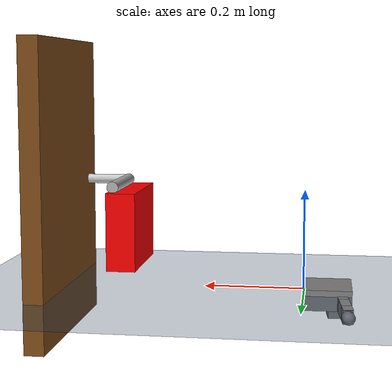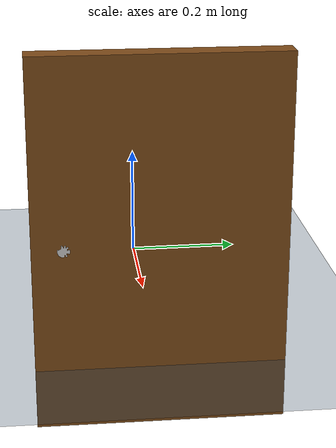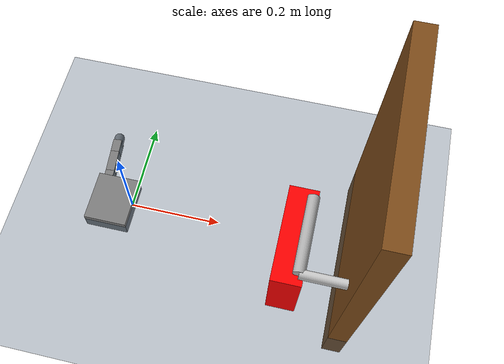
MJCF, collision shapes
<mujoco model="left_hand_doorknob scene">
  <include file="../left_hand_thumb.xml"/>

  <statistic center="0 0 0" extent="0.3"/>

  <visual>
    <rgba haze="0.15 0.25 0.35 1"/>
    <quality shadowsize="8192"/>
    <global azimuth="220" elevation="-40"/>
  </visual>

  <asset>
    <texture type="skybox" builtin="gradient" rgb1="0.3 0.5 0.7" rgb2="0 0 0" width="512" height="3072"/>
    <texture type="2d" name="groundplane" builtin="checker" mark="edge" rgb1="0.2 0.3 0.4" rgb2="0.1 0.2 0.3"
      markrgb="0.8 0.8 0.8" width="300" height="300"/>
    <material name="groundplane" texture="groundplane" texuniform="true" texrepeat="5 5" reflectance="0.2"/>
  </asset>

  <worldbody>
  <light pos="0 0 2"/>
  <geom name="floor" pos="0 0 0" size="2 2 .05" type="plane" material="groundplane"/>

  <body name="door" pos="0.5 0 0.2">
    <geom name="door_panel" type="box" size="0.02 0.2 0.3" rgba="0.5 0.3 0.1 1" margin="0.00"/>

    <body name="handle_root" pos="-0.02 -0.15 0">

      <geom name="handle_neck" type="cylinder" size="0.01 0.065"
            quat="0.707 0 0.707 0" pos="-0.025 0 0" rgba="0.8 0.8 0.8 1" margin="0.00"/>

      <geom name="handle_lever" type="cylinder" size="0.012 0.08"
            pos="-0.09 0.08 0" quat="0.707 0.707 0 0" rgba="0.7 0.7 0.7 1" margin="0.00"/>
    <body name="guide_barrier" pos="-0.11 0.08 -0.09">
        <geom name="guide_box" type="box" size="0.03 0.1 0.08"
              rgba="1 0 0 0.3" contype="1" conaffinity="1"/>
      </body>

    </body>
  </body>
</worldbody>
</mujoco>

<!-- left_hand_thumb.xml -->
<mujoco model="allegro_left">
  <compiler angle="radian" meshdir="assets" autolimits="true"/>

  <option cone="elliptic" impratio="10"/>

  <default>
    <default class="allegro_left">
      <joint axis="0 1 0" damping=".1"/>
      <position kp="1"/>
      <geom density="800"/>

      <default class="visual">
        <geom type="mesh" contype="0" conaffinity="0" group="2" material="black"/>
        <default class="palm_visual">
          <geom mesh="base_link"/>
        </default>
        <default class="base_visual">
          <geom mesh="link_0.0"/>
        </default>
        <default class="proximal_visual">
          <geom mesh="link_1.0"/>
        </default>
        <default class="medial_visual">
          <geom mesh="link_2.0"/>
        </default>
        <default class="distal_visual">
          <geom mesh="link_3.0"/>
        </default>
        <default class="fingertip_visual">
          <geom pos="0 0 0.0267" material="white" mesh="link_3.0_tip"/>
        </default>
        <default class="thumbtip_visual">
          <geom pos="0 0 0.0423" material="white" mesh="link_15.0_tip"/>
        </default>
      </default>

      <default class="collision">
        <geom group="3" type="box" mass="0"/>
        <default class="palm_collision">
          <geom size="0.0204 0.0565 0.0475" pos="-0.0093 0 -0.0475"/>
        </default>
        <default class="base_collision">
          <geom size="0.0098 0.01375 0.0082" pos="0 0 0.0082"/>
          <default class="thumb_base_collision">
            <geom size="0.0179 0.017 0.02275" pos="-0.0179 0.009 0.0145"/>
          </default>
        </default>
        <default class="proximal_collision">
          <geom size="0.0098 0.01375 0.027" pos="0 0 0.027"/>
          <default class="thumb_proximal_collision">
            <geom size="0.0098 0.01375 0.00885" pos="0 0 0.00885"/>
          </default>
        </default>
        <default class="medial_collision">
          <geom size="0.0098 0.01375 0.0192" pos="0 0 0.0192"/>
          <default class="thumb_medial_collision">
            <geom size="0.0098 0.01375 0.0257" pos="0 0 0.0257"/>
          </default>
        </default>
        <default class="distal_collision">
          <geom size="0.0098 0.01375 0.008" pos="0 0 0.008"/>
          <default class="thumb_distal_collision">
            <geom size="0.0098 0.01375 0.0157" pos="0 0 0.0157"/>
          </default>
        </default>
        <default class="fingertip_collision">
          <geom type="capsule" size="0.012 0.01" pos="0 0 0.019"/>
          <default class="thumbtip_collision">
            <geom type="capsule" size="0.012 0.008" pos="0 0 0.035"/>
          </default>
        </default>
      </default>

      <default class="base">
        <joint axis="0 0 1" range="-0.47 0.47"/>
        <position ctrlrange="-0.47 0.47"/>
      </default>
      <default class="thumb_base">
        <joint axis="1 0 0" range="0.263 1.396"/>
        <position ctrlrange="0.263 1.396"/>
      </default>
      <default class="thumb_proximal">
        <joint axis="0 0 -1" range="-0.105 1.163"/>
        <position ctrlrange="-0.105 1.163"/>
      </default>
      <default class="thumb_medial">
        <joint range="-0.189 1.644"/>
        <position ctrlrange="-0.189 1.644"/>
      </default>
      <default class="thumb_distal">
        <joint range="-0.162 1.719"/>
        <position ctrlrange="-0.162 1.719"/>
      </default>
    </default>
  </default>

  <asset>
    <material name="black" rgba="0.2 0.2 0.2 1"/>
    <material name="white" rgba="0.9 0.9 0.9 1"/>

    <mesh file="base_link_left.stl"/>
    <mesh file="link_0.0.stl"/>
    <mesh file="link_1.0.stl"/>
    <mesh file="link_2.0.stl"/>
    <mesh file="link_3.0.stl"/>
    <mesh file="link_3.0_tip.stl"/>
    <mesh file="link_12.0_left.stl"/>
    <mesh file="link_13.0.stl"/>
    <mesh file="link_14.0.stl"/>
    <mesh file="link_15.0.stl"/>
    <mesh file="link_15.0_tip.stl"/>
  </asset>

  <worldbody>
    <body name="palm" quat="0 1 0 1" childclass="allegro_left" mocap="true">
      <geom quat="1 -1 0 0" class="palm_visual" mesh="base_link_left"/>
      <geom class="palm_collision"/>
      <!-- Thumb -->
      <body name="th_base" pos="-0.0182 -0.019333 -0.045987" quat="0.477714 0.521334 -0.521334 0.477714">
        <joint name="thj0" class="thumb_base"/>
        <geom quat="0 1 0 0" class="visual" mesh="link_12.0_left"/>
        <geom class="thumb_base_collision"/>
        <body name="th_proximal" pos="-0.027 -0.005 0.0399">
          <joint name="thj1" class="thumb_proximal"/>
          <geom class="visual" mesh="link_13.0"/>
          <geom class="thumb_proximal_collision"/>
          <body name="th_medial" pos="0 0 0.0177">
            <joint name="thj2" class="thumb_medial"/>
            <geom class="visual" mesh="link_14.0"/>
            <geom class="thumb_medial_collision"/>
            <body name="th_distal" pos="0 0 0.0514">
              <joint name="thj3" class="thumb_distal"/>
              <geom class="visual" mesh="link_15.0"/>
              <geom class="thumb_distal_collision"/>
              <body name="th_tip">
                <geom class="thumbtip_visual"/>
                <geom class="thumbtip_collision"/>
                <site name="th_grasp" pos="0.012 0.0 0.0403" size="0.001" rgba="1 0 0 1" group="4"/>
              </body>
            </body>
          </body>
        </body>
      </body>
    </body>
  </worldbody>

  <contact>
    <exclude body1="palm" body2="th_base"/>
    <exclude body1="palm" body2="th_proximal"/>
  </contact>

  <actuator>
    <position name="tha0" joint="thj0" class="thumb_base"/>
    <position name="tha1" joint="thj1" class="thumb_proximal"/>
    <position name="tha2" joint="thj2" class="thumb_medial"/>
    <position name="tha3" joint="thj3" class="thumb_distal"/>
  </actuator>
</mujoco>
